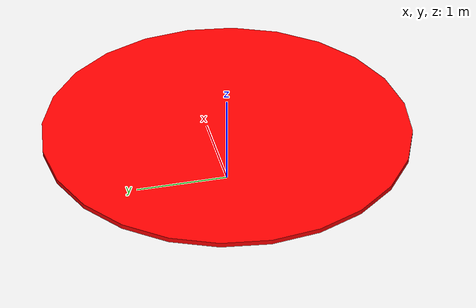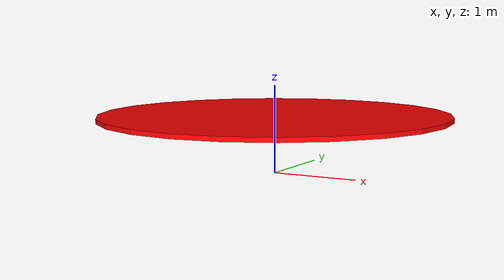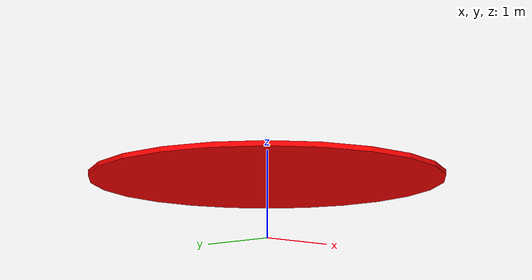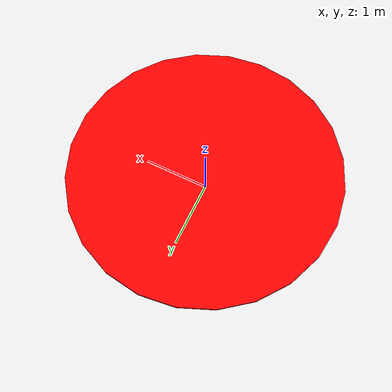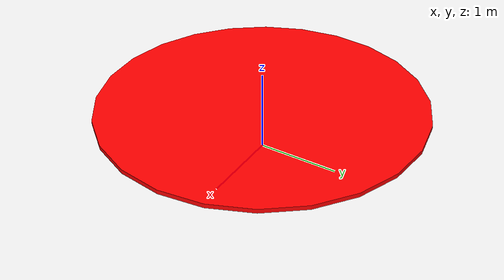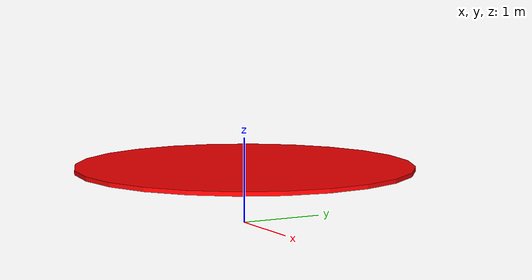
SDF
<?xml version="1.0" ?>
<sdf version="1.6">
  <model name="hazard_barrel1">
    <static>true</static>
    <link name="link">
      <pose>0 0 0.65 0 0 0</pose>

      <collision name="collision1">
        <geometry>
          <cylinder>
            <radius>2</radius>
            <length>0.05</length>
          </cylinder>
        </geometry>
      </collision>

      <visual name="visual1">
        <geometry>
          <cylinder>
            <radius>2</radius>
            <length>0.05</length>
          </cylinder>
        </geometry>
        <material>
          <ambient>1.0 0.0 0.0 1</ambient>
          <diffuse>1.0 0.0 0.0 1</diffuse>
          <specular>0.5 0.1 0.1 1</specular>
        </material>
      </visual>

    </link>
  </model>
</sdf>
